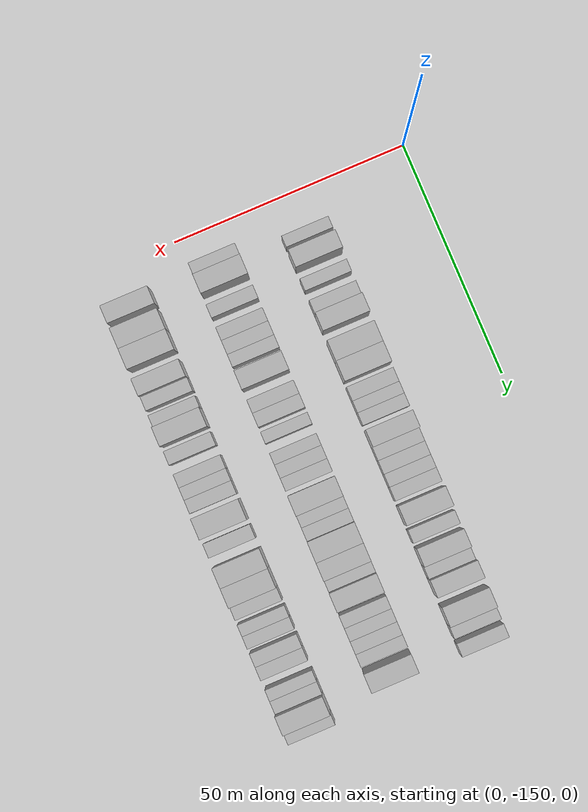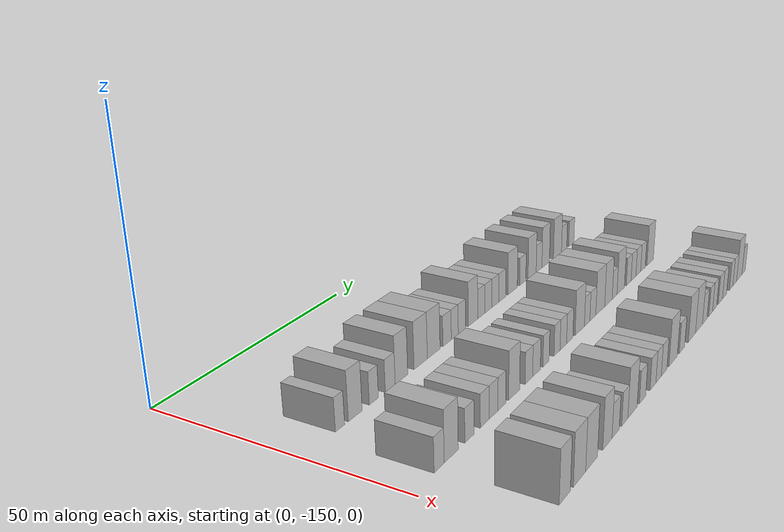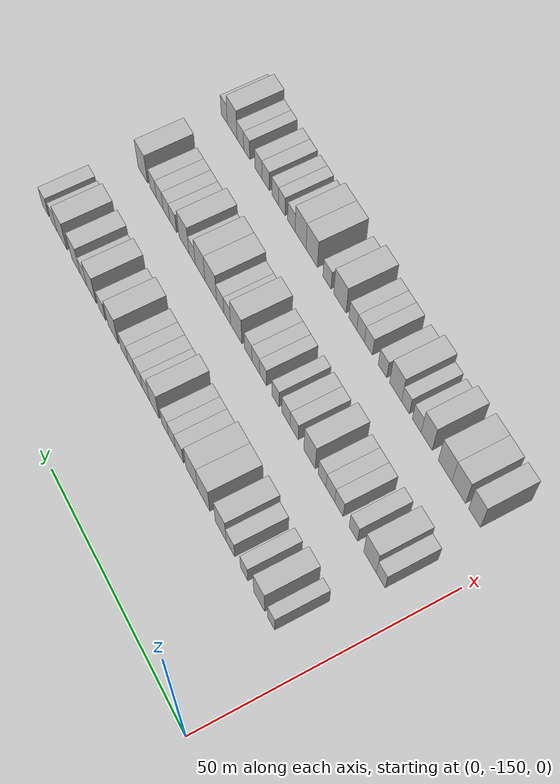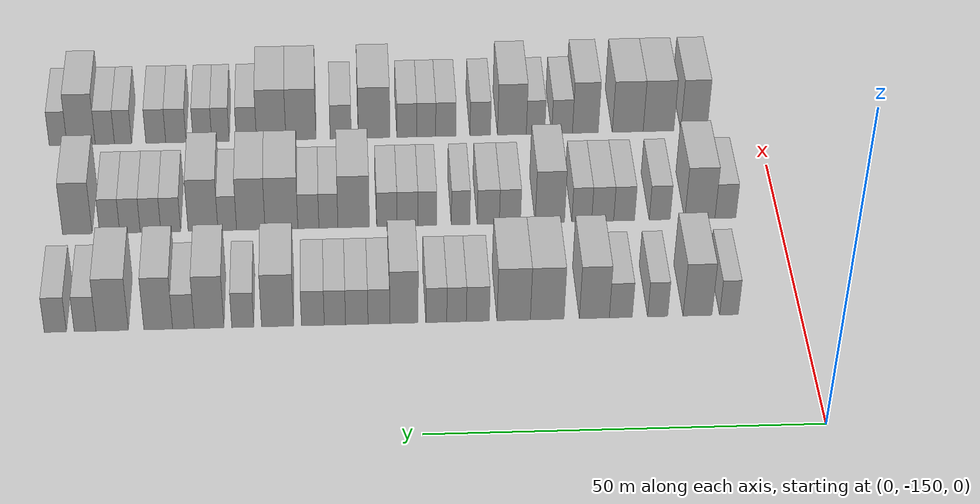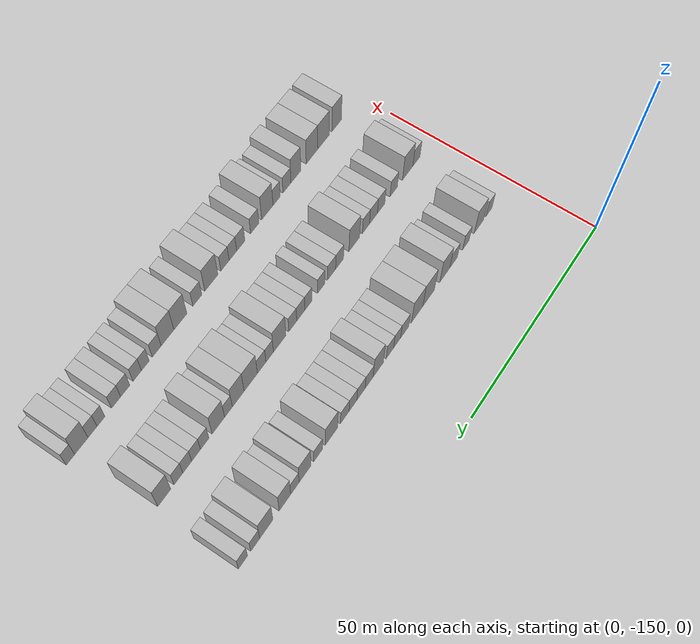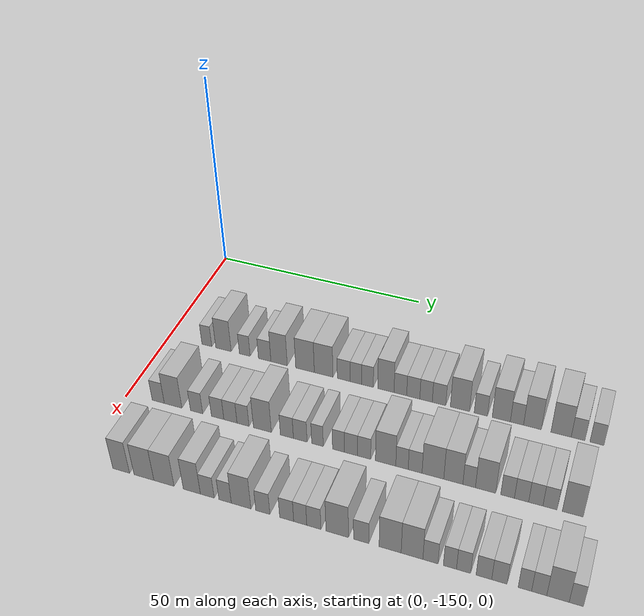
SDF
<sdf version="1.6">
 <world name="default">
  <model name="building_26">
   <static>1</static>
   <pose>25.0000 -140.5978 0 0.000000 0.000000 0.000000</pose>
   <link name="link">
    <pose>0 0 3.00 0 0 0</pose>
    <collision name="collision"><geometry><box><size>10.0000 2.4263 6.0000</size></box></geometry></collision>
    <visual name="visual">
     <cast_shadows>0</cast_shadows>
     <geometry><box><size>10.0000 2.4263 6.0000</size></box></geometry>
     <material>
      <script>
       <uri>model://HANNAS_wall/materials/scripts</uri>
       <uri>model://HANNAS_wall/materials/textures</uri>
       <name>vrc/HANNAS_wall</name>
      </script>
     </material>
    </visual>
   </link>
  </model>
  <model name="building_27">
   <static>1</static>
   <pose>25.0000 -136.4963 0 0.000000 0.000000 0.000000</pose>
   <link name="link">
    <pose>0 0 4.50 0 0 0</pose>
    <collision name="collision"><geometry><box><size>10.0000 3.7765 9.0000</size></box></geometry></collision>
    <visual name="visual">
     <cast_shadows>0</cast_shadows>
     <geometry><box><size>10.0000 3.7765 9.0000</size></box></geometry>
     <material>
      <script>
       <uri>model://HANNAS_wall/materials/scripts</uri>
       <uri>model://HANNAS_wall/materials/textures</uri>
       <name>vrc/HANNAS_wall</name>
      </script>
     </material>
    </visual>
   </link>
  </model>
  <model name="building_28">
   <static>1</static>
   <pose>25.0000 -131.3021 0 0.000000 0.000000 0.000000</pose>
   <link name="link">
    <pose>0 0 3.00 0 0 0</pose>
    <collision name="collision"><geometry><box><size>10.0000 2.6121 6.0000</size></box></geometry></collision>
    <visual name="visual">
     <cast_shadows>0</cast_shadows>
     <geometry><box><size>10.0000 2.6121 6.0000</size></box></geometry>
     <material>
      <script>
       <uri>model://HANNAS_wall/materials/scripts</uri>
       <uri>model://HANNAS_wall/materials/textures</uri>
       <name>vrc/HANNAS_wall</name>
      </script>
     </material>
    </visual>
   </link>
  </model>
  <model name="building_29">
   <static>1</static>
   <pose>25.0000 -126.5000 0 0.000000 0.000000 0.000000</pose>
   <link name="link">
    <pose>0 0 3.00 0 0 0</pose>
    <collision name="collision"><geometry><box><size>10.0000 2.9920 6.0000</size></box></geometry></collision>
    <visual name="visual">
     <cast_shadows>0</cast_shadows>
     <geometry><box><size>10.0000 2.9920 6.0000</size></box></geometry>
     <material>
      <script>
       <uri>model://HANNAS_wall/materials/scripts</uri>
       <uri>model://HANNAS_wall/materials/textures</uri>
       <name>vrc/HANNAS_wall</name>
      </script>
     </material>
    </visual>
   </link>
  </model>
  <model name="building_30">
   <static>1</static>
   <pose>25.0000 -123.0553 0 0.000000 0.000000 0.000000</pose>
   <link name="link">
    <pose>0 0 4.50 0 0 0</pose>
    <collision name="collision"><geometry><box><size>10.0000 3.8975 9.0000</size></box></geometry></collision>
    <visual name="visual">
     <cast_shadows>0</cast_shadows>
     <geometry><box><size>10.0000 3.8975 9.0000</size></box></geometry>
     <material>
      <script>
       <uri>model://HANNAS_wall/materials/scripts</uri>
       <uri>model://HANNAS_wall/materials/textures</uri>
       <name>vrc/HANNAS_wall</name>
      </script>
     </material>
    </visual>
   </link>
  </model>
  <model name="building_31">
   <static>1</static>
   <pose>25.0000 -116.9213 0 0.000000 0.000000 0.000000</pose>
   <link name="link">
    <pose>0 0 4.50 0 0 0</pose>
    <collision name="collision"><geometry><box><size>10.0000 4.3705 9.0000</size></box></geometry></collision>
    <visual name="visual">
     <cast_shadows>0</cast_shadows>
     <geometry><box><size>10.0000 4.3705 9.0000</size></box></geometry>
     <material>
      <script>
       <uri>model://HANNAS_wall/materials/scripts</uri>
       <uri>model://HANNAS_wall/materials/textures</uri>
       <name>vrc/HANNAS_wall</name>
      </script>
     </material>
    </visual>
   </link>
  </model>
  <model name="building_32">
   <static>1</static>
   <pose>25.0000 -112.5708 0 0.000000 0.000000 0.000000</pose>
   <link name="link">
    <pose>0 0 4.50 0 0 0</pose>
    <collision name="collision"><geometry><box><size>10.0000 4.3304 9.0000</size></box></geometry></collision>
    <visual name="visual">
     <cast_shadows>0</cast_shadows>
     <geometry><box><size>10.0000 4.3304 9.0000</size></box></geometry>
     <material>
      <script>
       <uri>model://HANNAS_wall/materials/scripts</uri>
       <uri>model://HANNAS_wall/materials/textures</uri>
       <name>vrc/HANNAS_wall</name>
      </script>
     </material>
    </visual>
   </link>
  </model>
  <model name="building_33">
   <static>1</static>
   <pose>25.0000 -107.9095 0 0.000000 0.000000 0.000000</pose>
   <link name="link">
    <pose>0 0 3.00 0 0 0</pose>
    <collision name="collision"><geometry><box><size>10.0000 2.9922 6.0000</size></box></geometry></collision>
    <visual name="visual">
     <cast_shadows>0</cast_shadows>
     <geometry><box><size>10.0000 2.9922 6.0000</size></box></geometry>
     <material>
      <script>
       <uri>model://HANNAS_wall/materials/scripts</uri>
       <uri>model://HANNAS_wall/materials/textures</uri>
       <name>vrc/HANNAS_wall</name>
      </script>
     </material>
    </visual>
   </link>
  </model>
  <model name="building_34">
   <static>1</static>
   <pose>25.0000 -105.1496 0 0.000000 0.000000 0.000000</pose>
   <link name="link">
    <pose>0 0 3.00 0 0 0</pose>
    <collision name="collision"><geometry><box><size>10.0000 2.5277 6.0000</size></box></geometry></collision>
    <visual name="visual">
     <cast_shadows>0</cast_shadows>
     <geometry><box><size>10.0000 2.5277 6.0000</size></box></geometry>
     <material>
      <script>
       <uri>model://HANNAS_wall/materials/scripts</uri>
       <uri>model://HANNAS_wall/materials/textures</uri>
       <name>vrc/HANNAS_wall</name>
      </script>
     </material>
    </visual>
   </link>
  </model>
  <model name="building_35">
   <static>1</static>
   <pose>25.0000 -102.5309 0 0.000000 0.000000 0.000000</pose>
   <link name="link">
    <pose>0 0 3.00 0 0 0</pose>
    <collision name="collision"><geometry><box><size>10.0000 2.7097 6.0000</size></box></geometry></collision>
    <visual name="visual">
     <cast_shadows>0</cast_shadows>
     <geometry><box><size>10.0000 2.7097 6.0000</size></box></geometry>
     <material>
      <script>
       <uri>model://HANNAS_wall/materials/scripts</uri>
       <uri>model://HANNAS_wall/materials/textures</uri>
       <name>vrc/HANNAS_wall</name>
      </script>
     </material>
    </visual>
   </link>
  </model>
  <model name="building_36">
   <static>1</static>
   <pose>25.0000 -98.3424 0 0.000000 0.000000 0.000000</pose>
   <link name="link">
    <pose>0 0 4.50 0 0 0</pose>
    <collision name="collision"><geometry><box><size>10.0000 3.6674 9.0000</size></box></geometry></collision>
    <visual name="visual">
     <cast_shadows>0</cast_shadows>
     <geometry><box><size>10.0000 3.6674 9.0000</size></box></geometry>
     <material>
      <script>
       <uri>model://HANNAS_wall/materials/scripts</uri>
       <uri>model://HANNAS_wall/materials/textures</uri>
       <name>vrc/HANNAS_wall</name>
      </script>
     </material>
    </visual>
   </link>
  </model>
  <model name="building_37">
   <static>1</static>
   <pose>25.0000 -95.0966 0 0.000000 0.000000 0.000000</pose>
   <link name="link">
    <pose>0 0 3.00 0 0 0</pose>
    <collision name="collision"><geometry><box><size>10.0000 2.8241 6.0000</size></box></geometry></collision>
    <visual name="visual">
     <cast_shadows>0</cast_shadows>
     <geometry><box><size>10.0000 2.8241 6.0000</size></box></geometry>
     <material>
      <script>
       <uri>model://HANNAS_wall/materials/scripts</uri>
       <uri>model://HANNAS_wall/materials/textures</uri>
       <name>vrc/HANNAS_wall</name>
      </script>
     </material>
    </visual>
   </link>
  </model>
  <model name="building_38">
   <static>1</static>
   <pose>25.0000 -92.2332 0 0.000000 0.000000 0.000000</pose>
   <link name="link">
    <pose>0 0 3.00 0 0 0</pose>
    <collision name="collision"><geometry><box><size>10.0000 2.9028 6.0000</size></box></geometry></collision>
    <visual name="visual">
     <cast_shadows>0</cast_shadows>
     <geometry><box><size>10.0000 2.9028 6.0000</size></box></geometry>
     <material>
      <script>
       <uri>model://HANNAS_wall/materials/scripts</uri>
       <uri>model://HANNAS_wall/materials/textures</uri>
       <name>vrc/HANNAS_wall</name>
      </script>
     </material>
    </visual>
   </link>
  </model>
  <model name="building_39">
   <static>1</static>
   <pose>25.0000 -89.4062 0 0.000000 0.000000 0.000000</pose>
   <link name="link">
    <pose>0 0 3.00 0 0 0</pose>
    <collision name="collision"><geometry><box><size>10.0000 2.7512 6.0000</size></box></geometry></collision>
    <visual name="visual">
     <cast_shadows>0</cast_shadows>
     <geometry><box><size>10.0000 2.7512 6.0000</size></box></geometry>
     <material>
      <script>
       <uri>model://HANNAS_wall/materials/scripts</uri>
       <uri>model://HANNAS_wall/materials/textures</uri>
       <name>vrc/HANNAS_wall</name>
      </script>
     </material>
    </visual>
   </link>
  </model>
  <model name="building_40">
   <static>1</static>
   <pose>25.0000 -86.5562 0 0.000000 0.000000 0.000000</pose>
   <link name="link">
    <pose>0 0 3.00 0 0 0</pose>
    <collision name="collision"><geometry><box><size>10.0000 2.9488 6.0000</size></box></geometry></collision>
    <visual name="visual">
     <cast_shadows>0</cast_shadows>
     <geometry><box><size>10.0000 2.9488 6.0000</size></box></geometry>
     <material>
      <script>
       <uri>model://HANNAS_wall/materials/scripts</uri>
       <uri>model://HANNAS_wall/materials/textures</uri>
       <name>vrc/HANNAS_wall</name>
      </script>
     </material>
    </visual>
   </link>
  </model>
  <model name="building_41">
   <static>1</static>
   <pose>25.0000 -82.0064 0 0.000000 0.000000 0.000000</pose>
   <link name="link">
    <pose>0 0 4.50 0 0 0</pose>
    <collision name="collision"><geometry><box><size>10.0000 4.1509 9.0000</size></box></geometry></collision>
    <visual name="visual">
     <cast_shadows>0</cast_shadows>
     <geometry><box><size>10.0000 4.1509 9.0000</size></box></geometry>
     <material>
      <script>
       <uri>model://HANNAS_wall/materials/scripts</uri>
       <uri>model://HANNAS_wall/materials/textures</uri>
       <name>vrc/HANNAS_wall</name>
      </script>
     </material>
    </visual>
   </link>
  </model>
  <model name="building_42">
   <static>1</static>
   <pose>25.0000 -77.5061 0 0.000000 0.000000 0.000000</pose>
   <link name="link">
    <pose>0 0 3.00 0 0 0</pose>
    <collision name="collision"><geometry><box><size>10.0000 2.8496 6.0000</size></box></geometry></collision>
    <visual name="visual">
     <cast_shadows>0</cast_shadows>
     <geometry><box><size>10.0000 2.8496 6.0000</size></box></geometry>
     <material>
      <script>
       <uri>model://HANNAS_wall/materials/scripts</uri>
       <uri>model://HANNAS_wall/materials/textures</uri>
       <name>vrc/HANNAS_wall</name>
      </script>
     </material>
    </visual>
   </link>
  </model>
  <model name="building_43">
   <static>1</static>
   <pose>25.0000 -73.1588 0 0.000000 0.000000 0.000000</pose>
   <link name="link">
    <pose>0 0 4.50 0 0 0</pose>
    <collision name="collision"><geometry><box><size>10.0000 3.8450 9.0000</size></box></geometry></collision>
    <visual name="visual">
     <cast_shadows>0</cast_shadows>
     <geometry><box><size>10.0000 3.8450 9.0000</size></box></geometry>
     <material>
      <script>
       <uri>model://HANNAS_wall/materials/scripts</uri>
       <uri>model://HANNAS_wall/materials/textures</uri>
       <name>vrc/HANNAS_wall</name>
      </script>
     </material>
    </visual>
   </link>
  </model>
  <model name="building_44">
   <static>1</static>
   <pose>25.0000 -69.8470 0 0.000000 0.000000 0.000000</pose>
   <link name="link">
    <pose>0 0 3.00 0 0 0</pose>
    <collision name="collision"><geometry><box><size>10.0000 2.7786 6.0000</size></box></geometry></collision>
    <visual name="visual">
     <cast_shadows>0</cast_shadows>
     <geometry><box><size>10.0000 2.7786 6.0000</size></box></geometry>
     <material>
      <script>
       <uri>model://HANNAS_wall/materials/scripts</uri>
       <uri>model://HANNAS_wall/materials/textures</uri>
       <name>vrc/HANNAS_wall</name>
      </script>
     </material>
    </visual>
   </link>
  </model>
  <model name="building_45">
   <static>1</static>
   <pose>25.0000 -66.6069 0 0.000000 0.000000 0.000000</pose>
   <link name="link">
    <pose>0 0 4.50 0 0 0</pose>
    <collision name="collision"><geometry><box><size>10.0000 3.7016 9.0000</size></box></geometry></collision>
    <visual name="visual">
     <cast_shadows>0</cast_shadows>
     <geometry><box><size>10.0000 3.7016 9.0000</size></box></geometry>
     <material>
      <script>
       <uri>model://HANNAS_wall/materials/scripts</uri>
       <uri>model://HANNAS_wall/materials/textures</uri>
       <name>vrc/HANNAS_wall</name>
      </script>
     </material>
    </visual>
   </link>
  </model>
  <model name="building_46">
   <static>1</static>
   <pose>25.0000 -60.6728 0 0.000000 0.000000 0.000000</pose>
   <link name="link">
    <pose>0 0 4.50 0 0 0</pose>
    <collision name="collision"><geometry><box><size>10.0000 4.1666 9.0000</size></box></geometry></collision>
    <visual name="visual">
     <cast_shadows>0</cast_shadows>
     <geometry><box><size>10.0000 4.1666 9.0000</size></box></geometry>
     <material>
      <script>
       <uri>model://HANNAS_wall/materials/scripts</uri>
       <uri>model://HANNAS_wall/materials/textures</uri>
       <name>vrc/HANNAS_wall</name>
      </script>
     </material>
    </visual>
   </link>
  </model>
  <model name="building_47">
   <static>1</static>
   <pose>25.0000 -57.1904 0 0.000000 0.000000 0.000000</pose>
   <link name="link">
    <pose>0 0 3.00 0 0 0</pose>
    <collision name="collision"><geometry><box><size>10.0000 2.7982 6.0000</size></box></geometry></collision>
    <visual name="visual">
     <cast_shadows>0</cast_shadows>
     <geometry><box><size>10.0000 2.7982 6.0000</size></box></geometry>
     <material>
      <script>
       <uri>model://HANNAS_wall/materials/scripts</uri>
       <uri>model://HANNAS_wall/materials/textures</uri>
       <name>vrc/HANNAS_wall</name>
      </script>
     </material>
    </visual>
   </link>
  </model>
  <model name="building_48">
   <static>1</static>
   <pose>25.0000 -53.3715 0 0.000000 0.000000 0.000000</pose>
   <link name="link">
    <pose>0 0 3.00 0 0 0</pose>
    <collision name="collision"><geometry><box><size>10.0000 2.8395 6.0000</size></box></geometry></collision>
    <visual name="visual">
     <cast_shadows>0</cast_shadows>
     <geometry><box><size>10.0000 2.8395 6.0000</size></box></geometry>
     <material>
      <script>
       <uri>model://HANNAS_wall/materials/scripts</uri>
       <uri>model://HANNAS_wall/materials/textures</uri>
       <name>vrc/HANNAS_wall</name>
      </script>
     </material>
    </visual>
   </link>
  </model>
  <model name="building_144">
   <static>1</static>
   <pose>44.0000 -142.7298 0 0.000000 0.000000 0.000000</pose>
   <link name="link">
    <pose>0 0 3.00 0 0 0</pose>
    <collision name="collision"><geometry><box><size>10.0000 2.8555 6.0000</size></box></geometry></collision>
    <visual name="visual">
     <cast_shadows>0</cast_shadows>
     <geometry><box><size>10.0000 2.8555 6.0000</size></box></geometry>
     <material>
      <script>
       <uri>model://HANNAS_wall/materials/scripts</uri>
       <uri>model://HANNAS_wall/materials/textures</uri>
       <name>vrc/HANNAS_wall</name>
      </script>
     </material>
    </visual>
   </link>
  </model>
  <model name="building_145">
   <static>1</static>
   <pose>44.0000 -139.2412 0 0.000000 0.000000 0.000000</pose>
   <link name="link">
    <pose>0 0 4.50 0 0 0</pose>
    <collision name="collision"><geometry><box><size>10.0000 4.1217 9.0000</size></box></geometry></collision>
    <visual name="visual">
     <cast_shadows>0</cast_shadows>
     <geometry><box><size>10.0000 4.1217 9.0000</size></box></geometry>
     <material>
      <script>
       <uri>model://HANNAS_wall/materials/scripts</uri>
       <uri>model://HANNAS_wall/materials/textures</uri>
       <name>vrc/HANNAS_wall</name>
      </script>
     </material>
    </visual>
   </link>
  </model>
  <model name="building_146">
   <static>1</static>
   <pose>44.0000 -133.7588 0 0.000000 0.000000 0.000000</pose>
   <link name="link">
    <pose>0 0 3.00 0 0 0</pose>
    <collision name="collision"><geometry><box><size>10.0000 2.8431 6.0000</size></box></geometry></collision>
    <visual name="visual">
     <cast_shadows>0</cast_shadows>
     <geometry><box><size>10.0000 2.8431 6.0000</size></box></geometry>
     <material>
      <script>
       <uri>model://HANNAS_wall/materials/scripts</uri>
       <uri>model://HANNAS_wall/materials/textures</uri>
       <name>vrc/HANNAS_wall</name>
      </script>
     </material>
    </visual>
   </link>
  </model>
  <model name="building_147">
   <static>1</static>
   <pose>44.0000 -128.9131 0 0.000000 0.000000 0.000000</pose>
   <link name="link">
    <pose>0 0 3.00 0 0 0</pose>
    <collision name="collision"><geometry><box><size>10.0000 2.8482 6.0000</size></box></geometry></collision>
    <visual name="visual">
     <cast_shadows>0</cast_shadows>
     <geometry><box><size>10.0000 2.8482 6.0000</size></box></geometry>
     <material>
      <script>
       <uri>model://HANNAS_wall/materials/scripts</uri>
       <uri>model://HANNAS_wall/materials/textures</uri>
       <name>vrc/HANNAS_wall</name>
      </script>
     </material>
    </visual>
   </link>
  </model>
  <model name="building_148">
   <static>1</static>
   <pose>44.0000 -125.9942 0 0.000000 0.000000 0.000000</pose>
   <link name="link">
    <pose>0 0 3.00 0 0 0</pose>
    <collision name="collision"><geometry><box><size>10.0000 2.9897 6.0000</size></box></geometry></collision>
    <visual name="visual">
     <cast_shadows>0</cast_shadows>
     <geometry><box><size>10.0000 2.9897 6.0000</size></box></geometry>
     <material>
      <script>
       <uri>model://HANNAS_wall/materials/scripts</uri>
       <uri>model://HANNAS_wall/materials/textures</uri>
       <name>vrc/HANNAS_wall</name>
      </script>
     </material>
    </visual>
   </link>
  </model>
  <model name="building_149">
   <static>1</static>
   <pose>44.0000 -123.1475 0 0.000000 0.000000 0.000000</pose>
   <link name="link">
    <pose>0 0 3.00 0 0 0</pose>
    <collision name="collision"><geometry><box><size>10.0000 2.7037 6.0000</size></box></geometry></collision>
    <visual name="visual">
     <cast_shadows>0</cast_shadows>
     <geometry><box><size>10.0000 2.7037 6.0000</size></box></geometry>
     <material>
      <script>
       <uri>model://HANNAS_wall/materials/scripts</uri>
       <uri>model://HANNAS_wall/materials/textures</uri>
       <name>vrc/HANNAS_wall</name>
      </script>
     </material>
    </visual>
   </link>
  </model>
  <model name="building_150">
   <static>1</static>
   <pose>44.0000 -118.8008 0 0.000000 0.000000 0.000000</pose>
   <link name="link">
    <pose>0 0 4.50 0 0 0</pose>
    <collision name="collision"><geometry><box><size>10.0000 3.9897 9.0000</size></box></geometry></collision>
    <visual name="visual">
     <cast_shadows>0</cast_shadows>
     <geometry><box><size>10.0000 3.9897 9.0000</size></box></geometry>
     <material>
      <script>
       <uri>model://HANNAS_wall/materials/scripts</uri>
       <uri>model://HANNAS_wall/materials/textures</uri>
       <name>vrc/HANNAS_wall</name>
      </script>
     </material>
    </visual>
   </link>
  </model>
  <model name="building_151">
   <static>1</static>
   <pose>44.0000 -113.3717 0 0.000000 0.000000 0.000000</pose>
   <link name="link">
    <pose>0 0 3.00 0 0 0</pose>
    <collision name="collision"><geometry><box><size>10.0000 2.8684 6.0000</size></box></geometry></collision>
    <visual name="visual">
     <cast_shadows>0</cast_shadows>
     <geometry><box><size>10.0000 2.8684 6.0000</size></box></geometry>
     <material>
      <script>
       <uri>model://HANNAS_wall/materials/scripts</uri>
       <uri>model://HANNAS_wall/materials/textures</uri>
       <name>vrc/HANNAS_wall</name>
      </script>
     </material>
    </visual>
   </link>
  </model>
  <model name="building_152">
   <static>1</static>
   <pose>44.0000 -110.4384 0 0.000000 0.000000 0.000000</pose>
   <link name="link">
    <pose>0 0 3.00 0 0 0</pose>
    <collision name="collision"><geometry><box><size>10.0000 2.9983 6.0000</size></box></geometry></collision>
    <visual name="visual">
     <cast_shadows>0</cast_shadows>
     <geometry><box><size>10.0000 2.9983 6.0000</size></box></geometry>
     <material>
      <script>
       <uri>model://HANNAS_wall/materials/scripts</uri>
       <uri>model://HANNAS_wall/materials/textures</uri>
       <name>vrc/HANNAS_wall</name>
      </script>
     </material>
    </visual>
   </link>
  </model>
  <model name="building_153">
   <static>1</static>
   <pose>44.0000 -106.6812 0 0.000000 0.000000 0.000000</pose>
   <link name="link">
    <pose>0 0 3.00 0 0 0</pose>
    <collision name="collision"><geometry><box><size>10.0000 2.5162 6.0000</size></box></geometry></collision>
    <visual name="visual">
     <cast_shadows>0</cast_shadows>
     <geometry><box><size>10.0000 2.5162 6.0000</size></box></geometry>
     <material>
      <script>
       <uri>model://HANNAS_wall/materials/scripts</uri>
       <uri>model://HANNAS_wall/materials/textures</uri>
       <name>vrc/HANNAS_wall</name>
      </script>
     </material>
    </visual>
   </link>
  </model>
  <model name="building_154">
   <static>1</static>
   <pose>44.0000 -102.1625 0 0.000000 0.000000 0.000000</pose>
   <link name="link">
    <pose>0 0 3.00 0 0 0</pose>
    <collision name="collision"><geometry><box><size>10.0000 2.5213 6.0000</size></box></geometry></collision>
    <visual name="visual">
     <cast_shadows>0</cast_shadows>
     <geometry><box><size>10.0000 2.5213 6.0000</size></box></geometry>
     <material>
      <script>
       <uri>model://HANNAS_wall/materials/scripts</uri>
       <uri>model://HANNAS_wall/materials/textures</uri>
       <name>vrc/HANNAS_wall</name>
      </script>
     </material>
    </visual>
   </link>
  </model>
  <model name="building_155">
   <static>1</static>
   <pose>44.0000 -99.4831 0 0.000000 0.000000 0.000000</pose>
   <link name="link">
    <pose>0 0 3.00 0 0 0</pose>
    <collision name="collision"><geometry><box><size>10.0000 2.8375 6.0000</size></box></geometry></collision>
    <visual name="visual">
     <cast_shadows>0</cast_shadows>
     <geometry><box><size>10.0000 2.8375 6.0000</size></box></geometry>
     <material>
      <script>
       <uri>model://HANNAS_wall/materials/scripts</uri>
       <uri>model://HANNAS_wall/materials/textures</uri>
       <name>vrc/HANNAS_wall</name>
      </script>
     </material>
    </visual>
   </link>
  </model>
  <model name="building_156">
   <static>1</static>
   <pose>44.0000 -96.6881 0 0.000000 0.000000 0.000000</pose>
   <link name="link">
    <pose>0 0 3.00 0 0 0</pose>
    <collision name="collision"><geometry><box><size>10.0000 2.7524 6.0000</size></box></geometry></collision>
    <visual name="visual">
     <cast_shadows>0</cast_shadows>
     <geometry><box><size>10.0000 2.7524 6.0000</size></box></geometry>
     <material>
      <script>
       <uri>model://HANNAS_wall/materials/scripts</uri>
       <uri>model://HANNAS_wall/materials/textures</uri>
       <name>vrc/HANNAS_wall</name>
      </script>
     </material>
    </visual>
   </link>
  </model>
  <model name="building_157">
   <static>1</static>
   <pose>44.0000 -92.1862 0 0.000000 0.000000 0.000000</pose>
   <link name="link">
    <pose>0 0 4.50 0 0 0</pose>
    <collision name="collision"><geometry><box><size>10.0000 4.2514 9.0000</size></box></geometry></collision>
    <visual name="visual">
     <cast_shadows>0</cast_shadows>
     <geometry><box><size>10.0000 4.2514 9.0000</size></box></geometry>
     <material>
      <script>
       <uri>model://HANNAS_wall/materials/scripts</uri>
       <uri>model://HANNAS_wall/materials/textures</uri>
       <name>vrc/HANNAS_wall</name>
      </script>
     </material>
    </visual>
   </link>
  </model>
  <model name="building_158">
   <static>1</static>
   <pose>44.0000 -88.7764 0 0.000000 0.000000 0.000000</pose>
   <link name="link">
    <pose>0 0 3.00 0 0 0</pose>
    <collision name="collision"><geometry><box><size>10.0000 2.5682 6.0000</size></box></geometry></collision>
    <visual name="visual">
     <cast_shadows>0</cast_shadows>
     <geometry><box><size>10.0000 2.5682 6.0000</size></box></geometry>
     <material>
      <script>
       <uri>model://HANNAS_wall/materials/scripts</uri>
       <uri>model://HANNAS_wall/materials/textures</uri>
       <name>vrc/HANNAS_wall</name>
      </script>
     </material>
    </visual>
   </link>
  </model>
  <model name="building_159">
   <static>1</static>
   <pose>44.0000 -86.0699 0 0.000000 0.000000 0.000000</pose>
   <link name="link">
    <pose>0 0 3.00 0 0 0</pose>
    <collision name="collision"><geometry><box><size>10.0000 2.8447 6.0000</size></box></geometry></collision>
    <visual name="visual">
     <cast_shadows>0</cast_shadows>
     <geometry><box><size>10.0000 2.8447 6.0000</size></box></geometry>
     <material>
      <script>
       <uri>model://HANNAS_wall/materials/scripts</uri>
       <uri>model://HANNAS_wall/materials/textures</uri>
       <name>vrc/HANNAS_wall</name>
      </script>
     </material>
    </visual>
   </link>
  </model>
  <model name="building_160">
   <static>1</static>
   <pose>44.0000 -82.4317 0 0.000000 0.000000 0.000000</pose>
   <link name="link">
    <pose>0 0 4.50 0 0 0</pose>
    <collision name="collision"><geometry><box><size>10.0000 4.4317 9.0000</size></box></geometry></collision>
    <visual name="visual">
     <cast_shadows>0</cast_shadows>
     <geometry><box><size>10.0000 4.4317 9.0000</size></box></geometry>
     <material>
      <script>
       <uri>model://HANNAS_wall/materials/scripts</uri>
       <uri>model://HANNAS_wall/materials/textures</uri>
       <name>vrc/HANNAS_wall</name>
      </script>
     </material>
    </visual>
   </link>
  </model>
  <model name="building_161">
   <static>1</static>
   <pose>44.0000 -78.2923 0 0.000000 0.000000 0.000000</pose>
   <link name="link">
    <pose>0 0 4.50 0 0 0</pose>
    <collision name="collision"><geometry><box><size>10.0000 3.8472 9.0000</size></box></geometry></collision>
    <visual name="visual">
     <cast_shadows>0</cast_shadows>
     <geometry><box><size>10.0000 3.8472 9.0000</size></box></geometry>
     <material>
      <script>
       <uri>model://HANNAS_wall/materials/scripts</uri>
       <uri>model://HANNAS_wall/materials/textures</uri>
       <name>vrc/HANNAS_wall</name>
      </script>
     </material>
    </visual>
   </link>
  </model>
  <model name="building_162">
   <static>1</static>
   <pose>44.0000 -75.1116 0 0.000000 0.000000 0.000000</pose>
   <link name="link">
    <pose>0 0 3.00 0 0 0</pose>
    <collision name="collision"><geometry><box><size>10.0000 2.5141 6.0000</size></box></geometry></collision>
    <visual name="visual">
     <cast_shadows>0</cast_shadows>
     <geometry><box><size>10.0000 2.5141 6.0000</size></box></geometry>
     <material>
      <script>
       <uri>model://HANNAS_wall/materials/scripts</uri>
       <uri>model://HANNAS_wall/materials/textures</uri>
       <name>vrc/HANNAS_wall</name>
      </script>
     </material>
    </visual>
   </link>
  </model>
  <model name="building_163">
   <static>1</static>
   <pose>44.0000 -71.8454 0 0.000000 0.000000 0.000000</pose>
   <link name="link">
    <pose>0 0 4.50 0 0 0</pose>
    <collision name="collision"><geometry><box><size>10.0000 4.0183 9.0000</size></box></geometry></collision>
    <visual name="visual">
     <cast_shadows>0</cast_shadows>
     <geometry><box><size>10.0000 4.0183 9.0000</size></box></geometry>
     <material>
      <script>
       <uri>model://HANNAS_wall/materials/scripts</uri>
       <uri>model://HANNAS_wall/materials/textures</uri>
       <name>vrc/HANNAS_wall</name>
      </script>
     </material>
    </visual>
   </link>
  </model>
  <model name="building_164">
   <static>1</static>
   <pose>44.0000 -67.4927 0 0.000000 0.000000 0.000000</pose>
   <link name="link">
    <pose>0 0 3.00 0 0 0</pose>
    <collision name="collision"><geometry><box><size>10.0000 2.6871 6.0000</size></box></geometry></collision>
    <visual name="visual">
     <cast_shadows>0</cast_shadows>
     <geometry><box><size>10.0000 2.6871 6.0000</size></box></geometry>
     <material>
      <script>
       <uri>model://HANNAS_wall/materials/scripts</uri>
       <uri>model://HANNAS_wall/materials/textures</uri>
       <name>vrc/HANNAS_wall</name>
      </script>
     </material>
    </visual>
   </link>
  </model>
  <model name="building_165">
   <static>1</static>
   <pose>44.0000 -64.7639 0 0.000000 0.000000 0.000000</pose>
   <link name="link">
    <pose>0 0 3.00 0 0 0</pose>
    <collision name="collision"><geometry><box><size>10.0000 2.7705 6.0000</size></box></geometry></collision>
    <visual name="visual">
     <cast_shadows>0</cast_shadows>
     <geometry><box><size>10.0000 2.7705 6.0000</size></box></geometry>
     <material>
      <script>
       <uri>model://HANNAS_wall/materials/scripts</uri>
       <uri>model://HANNAS_wall/materials/textures</uri>
       <name>vrc/HANNAS_wall</name>
      </script>
     </material>
    </visual>
   </link>
  </model>
  <model name="building_166">
   <static>1</static>
   <pose>44.0000 -62.0002 0 0.000000 0.000000 0.000000</pose>
   <link name="link">
    <pose>0 0 3.00 0 0 0</pose>
    <collision name="collision"><geometry><box><size>10.0000 2.7569 6.0000</size></box></geometry></collision>
    <visual name="visual">
     <cast_shadows>0</cast_shadows>
     <geometry><box><size>10.0000 2.7569 6.0000</size></box></geometry>
     <material>
      <script>
       <uri>model://HANNAS_wall/materials/scripts</uri>
       <uri>model://HANNAS_wall/materials/textures</uri>
       <name>vrc/HANNAS_wall</name>
      </script>
     </material>
    </visual>
   </link>
  </model>
  <model name="building_167">
   <static>1</static>
   <pose>44.0000 -59.2667 0 0.000000 0.000000 0.000000</pose>
   <link name="link">
    <pose>0 0 3.00 0 0 0</pose>
    <collision name="collision"><geometry><box><size>10.0000 2.7101 6.0000</size></box></geometry></collision>
    <visual name="visual">
     <cast_shadows>0</cast_shadows>
     <geometry><box><size>10.0000 2.7101 6.0000</size></box></geometry>
     <material>
      <script>
       <uri>model://HANNAS_wall/materials/scripts</uri>
       <uri>model://HANNAS_wall/materials/textures</uri>
       <name>vrc/HANNAS_wall</name>
      </script>
     </material>
    </visual>
   </link>
  </model>
  <model name="building_168">
   <static>1</static>
   <pose>44.0000 -54.9237 0 0.000000 0.000000 0.000000</pose>
   <link name="link">
    <pose>0 0 4.50 0 0 0</pose>
    <collision name="collision"><geometry><box><size>10.0000 3.9758 9.0000</size></box></geometry></collision>
    <visual name="visual">
     <cast_shadows>0</cast_shadows>
     <geometry><box><size>10.0000 3.9758 9.0000</size></box></geometry>
     <material>
      <script>
       <uri>model://HANNAS_wall/materials/scripts</uri>
       <uri>model://HANNAS_wall/materials/textures</uri>
       <name>vrc/HANNAS_wall</name>
      </script>
     </material>
    </visual>
   </link>
  </model>
  <model name="building_266">
   <static>1</static>
   <pose>63.0000 -140.8308 0 0.000000 0.000000 0.000000</pose>
   <link name="link">
    <pose>0 0 4.50 0 0 0</pose>
    <collision name="collision"><geometry><box><size>10.0000 3.7367 9.0000</size></box></geometry></collision>
    <visual name="visual">
     <cast_shadows>0</cast_shadows>
     <geometry><box><size>10.0000 3.7367 9.0000</size></box></geometry>
     <material>
      <script>
       <uri>model://HANNAS_wall/materials/scripts</uri>
       <uri>model://HANNAS_wall/materials/textures</uri>
       <name>vrc/HANNAS_wall</name>
      </script>
     </material>
    </visual>
   </link>
  </model>
  <model name="building_267">
   <static>1</static>
   <pose>63.0000 -135.7809 0 0.000000 0.000000 0.000000</pose>
   <link name="link">
    <pose>0 0 4.50 0 0 0</pose>
    <collision name="collision"><geometry><box><size>10.0000 4.3631 9.0000</size></box></geometry></collision>
    <visual name="visual">
     <cast_shadows>0</cast_shadows>
     <geometry><box><size>10.0000 4.3631 9.0000</size></box></geometry>
     <material>
      <script>
       <uri>model://HANNAS_wall/materials/scripts</uri>
       <uri>model://HANNAS_wall/materials/textures</uri>
       <name>vrc/HANNAS_wall</name>
      </script>
     </material>
    </visual>
   </link>
  </model>
  <model name="building_268">
   <static>1</static>
   <pose>63.0000 -131.4045 0 0.000000 0.000000 0.000000</pose>
   <link name="link">
    <pose>0 0 4.50 0 0 0</pose>
    <collision name="collision"><geometry><box><size>10.0000 4.3897 9.0000</size></box></geometry></collision>
    <visual name="visual">
     <cast_shadows>0</cast_shadows>
     <geometry><box><size>10.0000 4.3897 9.0000</size></box></geometry>
     <material>
      <script>
       <uri>model://HANNAS_wall/materials/scripts</uri>
       <uri>model://HANNAS_wall/materials/textures</uri>
       <name>vrc/HANNAS_wall</name>
      </script>
     </material>
    </visual>
   </link>
  </model>
  <model name="building_269">
   <static>1</static>
   <pose>63.0000 -125.3756 0 0.000000 0.000000 0.000000</pose>
   <link name="link">
    <pose>0 0 4.50 0 0 0</pose>
    <collision name="collision"><geometry><box><size>10.0000 3.6679 9.0000</size></box></geometry></collision>
    <visual name="visual">
     <cast_shadows>0</cast_shadows>
     <geometry><box><size>10.0000 3.6679 9.0000</size></box></geometry>
     <material>
      <script>
       <uri>model://HANNAS_wall/materials/scripts</uri>
       <uri>model://HANNAS_wall/materials/textures</uri>
       <name>vrc/HANNAS_wall</name>
      </script>
     </material>
    </visual>
   </link>
  </model>
  <model name="building_270">
   <static>1</static>
   <pose>63.0000 -122.0742 0 0.000000 0.000000 0.000000</pose>
   <link name="link">
    <pose>0 0 3.00 0 0 0</pose>
    <collision name="collision"><geometry><box><size>10.0000 2.9349 6.0000</size></box></geometry></collision>
    <visual name="visual">
     <cast_shadows>0</cast_shadows>
     <geometry><box><size>10.0000 2.9349 6.0000</size></box></geometry>
     <material>
      <script>
       <uri>model://HANNAS_wall/materials/scripts</uri>
       <uri>model://HANNAS_wall/materials/textures</uri>
       <name>vrc/HANNAS_wall</name>
      </script>
     </material>
    </visual>
   </link>
  </model>
  <model name="building_271">
   <static>1</static>
   <pose>63.0000 -118.3020 0 0.000000 0.000000 0.000000</pose>
   <link name="link">
    <pose>0 0 3.00 0 0 0</pose>
    <collision name="collision"><geometry><box><size>10.0000 2.6096 6.0000</size></box></geometry></collision>
    <visual name="visual">
     <cast_shadows>0</cast_shadows>
     <geometry><box><size>10.0000 2.6096 6.0000</size></box></geometry>
     <material>
      <script>
       <uri>model://HANNAS_wall/materials/scripts</uri>
       <uri>model://HANNAS_wall/materials/textures</uri>
       <name>vrc/HANNAS_wall</name>
      </script>
     </material>
    </visual>
   </link>
  </model>
  <model name="building_272">
   <static>1</static>
   <pose>63.0000 -114.9544 0 0.000000 0.000000 0.000000</pose>
   <link name="link">
    <pose>0 0 4.50 0 0 0</pose>
    <collision name="collision"><geometry><box><size>10.0000 4.0856 9.0000</size></box></geometry></collision>
    <visual name="visual">
     <cast_shadows>0</cast_shadows>
     <geometry><box><size>10.0000 4.0856 9.0000</size></box></geometry>
     <material>
      <script>
       <uri>model://HANNAS_wall/materials/scripts</uri>
       <uri>model://HANNAS_wall/materials/textures</uri>
       <name>vrc/HANNAS_wall</name>
      </script>
     </material>
    </visual>
   </link>
  </model>
  <model name="building_273">
   <static>1</static>
   <pose>63.0000 -110.4555 0 0.000000 0.000000 0.000000</pose>
   <link name="link">
    <pose>0 0 3.00 0 0 0</pose>
    <collision name="collision"><geometry><box><size>10.0000 2.9122 6.0000</size></box></geometry></collision>
    <visual name="visual">
     <cast_shadows>0</cast_shadows>
     <geometry><box><size>10.0000 2.9122 6.0000</size></box></geometry>
     <material>
      <script>
       <uri>model://HANNAS_wall/materials/scripts</uri>
       <uri>model://HANNAS_wall/materials/textures</uri>
       <name>vrc/HANNAS_wall</name>
      </script>
     </material>
    </visual>
   </link>
  </model>
  <model name="building_274">
   <static>1</static>
   <pose>63.0000 -105.5724 0 0.000000 0.000000 0.000000</pose>
   <link name="link">
    <pose>0 0 3.00 0 0 0</pose>
    <collision name="collision"><geometry><box><size>10.0000 2.8539 6.0000</size></box></geometry></collision>
    <visual name="visual">
     <cast_shadows>0</cast_shadows>
     <geometry><box><size>10.0000 2.8539 6.0000</size></box></geometry>
     <material>
      <script>
       <uri>model://HANNAS_wall/materials/scripts</uri>
       <uri>model://HANNAS_wall/materials/textures</uri>
       <name>vrc/HANNAS_wall</name>
      </script>
     </material>
    </visual>
   </link>
  </model>
  <model name="building_275">
   <static>1</static>
   <pose>63.0000 -102.8254 0 0.000000 0.000000 0.000000</pose>
   <link name="link">
    <pose>0 0 3.00 0 0 0</pose>
    <collision name="collision"><geometry><box><size>10.0000 2.6402 6.0000</size></box></geometry></collision>
    <visual name="visual">
     <cast_shadows>0</cast_shadows>
     <geometry><box><size>10.0000 2.6402 6.0000</size></box></geometry>
     <material>
      <script>
       <uri>model://HANNAS_wall/materials/scripts</uri>
       <uri>model://HANNAS_wall/materials/textures</uri>
       <name>vrc/HANNAS_wall</name>
      </script>
     </material>
    </visual>
   </link>
  </model>
  <model name="building_276">
   <static>1</static>
   <pose>63.0000 -100.0833 0 0.000000 0.000000 0.000000</pose>
   <link name="link">
    <pose>0 0 3.00 0 0 0</pose>
    <collision name="collision"><geometry><box><size>10.0000 2.8441 6.0000</size></box></geometry></collision>
    <visual name="visual">
     <cast_shadows>0</cast_shadows>
     <geometry><box><size>10.0000 2.8441 6.0000</size></box></geometry>
     <material>
      <script>
       <uri>model://HANNAS_wall/materials/scripts</uri>
       <uri>model://HANNAS_wall/materials/textures</uri>
       <name>vrc/HANNAS_wall</name>
      </script>
     </material>
    </visual>
   </link>
  </model>
  <model name="building_277">
   <static>1</static>
   <pose>63.0000 -95.4365 0 0.000000 0.000000 0.000000</pose>
   <link name="link">
    <pose>0 0 4.50 0 0 0</pose>
    <collision name="collision"><geometry><box><size>10.0000 4.4496 9.0000</size></box></geometry></collision>
    <visual name="visual">
     <cast_shadows>0</cast_shadows>
     <geometry><box><size>10.0000 4.4496 9.0000</size></box></geometry>
     <material>
      <script>
       <uri>model://HANNAS_wall/materials/scripts</uri>
       <uri>model://HANNAS_wall/materials/textures</uri>
       <name>vrc/HANNAS_wall</name>
      </script>
     </material>
    </visual>
   </link>
  </model>
  <model name="building_278">
   <static>1</static>
   <pose>63.0000 -90.7212 0 0.000000 0.000000 0.000000</pose>
   <link name="link">
    <pose>0 0 3.00 0 0 0</pose>
    <collision name="collision"><geometry><box><size>10.0000 2.9810 6.0000</size></box></geometry></collision>
    <visual name="visual">
     <cast_shadows>0</cast_shadows>
     <geometry><box><size>10.0000 2.9810 6.0000</size></box></geometry>
     <material>
      <script>
       <uri>model://HANNAS_wall/materials/scripts</uri>
       <uri>model://HANNAS_wall/materials/textures</uri>
       <name>vrc/HANNAS_wall</name>
      </script>
     </material>
    </visual>
   </link>
  </model>
  <model name="building_279">
   <static>1</static>
   <pose>63.0000 -85.1073 0 0.000000 0.000000 0.000000</pose>
   <link name="link">
    <pose>0 0 4.50 0 0 0</pose>
    <collision name="collision"><geometry><box><size>10.0000 4.2468 9.0000</size></box></geometry></collision>
    <visual name="visual">
     <cast_shadows>0</cast_shadows>
     <geometry><box><size>10.0000 4.2468 9.0000</size></box></geometry>
     <material>
      <script>
       <uri>model://HANNAS_wall/materials/scripts</uri>
       <uri>model://HANNAS_wall/materials/textures</uri>
       <name>vrc/HANNAS_wall</name>
      </script>
     </material>
    </visual>
   </link>
  </model>
  <model name="building_280">
   <static>1</static>
   <pose>63.0000 -80.9141 0 0.000000 0.000000 0.000000</pose>
   <link name="link">
    <pose>0 0 4.50 0 0 0</pose>
    <collision name="collision"><geometry><box><size>10.0000 4.1396 9.0000</size></box></geometry></collision>
    <visual name="visual">
     <cast_shadows>0</cast_shadows>
     <geometry><box><size>10.0000 4.1396 9.0000</size></box></geometry>
     <material>
      <script>
       <uri>model://HANNAS_wall/materials/scripts</uri>
       <uri>model://HANNAS_wall/materials/textures</uri>
       <name>vrc/HANNAS_wall</name>
      </script>
     </material>
    </visual>
   </link>
  </model>
  <model name="building_281">
   <static>1</static>
   <pose>63.0000 -77.4236 0 0.000000 0.000000 0.000000</pose>
   <link name="link">
    <pose>0 0 3.00 0 0 0</pose>
    <collision name="collision"><geometry><box><size>10.0000 2.8413 6.0000</size></box></geometry></collision>
    <visual name="visual">
     <cast_shadows>0</cast_shadows>
     <geometry><box><size>10.0000 2.8413 6.0000</size></box></geometry>
     <material>
      <script>
       <uri>model://HANNAS_wall/materials/scripts</uri>
       <uri>model://HANNAS_wall/materials/textures</uri>
       <name>vrc/HANNAS_wall</name>
      </script>
     </material>
    </visual>
   </link>
  </model>
  <model name="building_282">
   <static>1</static>
   <pose>63.0000 -73.7749 0 0.000000 0.000000 0.000000</pose>
   <link name="link">
    <pose>0 0 3.00 0 0 0</pose>
    <collision name="collision"><geometry><box><size>10.0000 2.4561 6.0000</size></box></geometry></collision>
    <visual name="visual">
     <cast_shadows>0</cast_shadows>
     <geometry><box><size>10.0000 2.4561 6.0000</size></box></geometry>
     <material>
      <script>
       <uri>model://HANNAS_wall/materials/scripts</uri>
       <uri>model://HANNAS_wall/materials/textures</uri>
       <name>vrc/HANNAS_wall</name>
      </script>
     </material>
    </visual>
   </link>
  </model>
  <model name="building_283">
   <static>1</static>
   <pose>63.0000 -71.2338 0 0.000000 0.000000 0.000000</pose>
   <link name="link">
    <pose>0 0 3.00 0 0 0</pose>
    <collision name="collision"><geometry><box><size>10.0000 2.6263 6.0000</size></box></geometry></collision>
    <visual name="visual">
     <cast_shadows>0</cast_shadows>
     <geometry><box><size>10.0000 2.6263 6.0000</size></box></geometry>
     <material>
      <script>
       <uri>model://HANNAS_wall/materials/scripts</uri>
       <uri>model://HANNAS_wall/materials/textures</uri>
       <name>vrc/HANNAS_wall</name>
      </script>
     </material>
    </visual>
   </link>
  </model>
  <model name="building_284">
   <static>1</static>
   <pose>63.0000 -67.4892 0 0.000000 0.000000 0.000000</pose>
   <link name="link">
    <pose>0 0 3.00 0 0 0</pose>
    <collision name="collision"><geometry><box><size>10.0000 2.8628 6.0000</size></box></geometry></collision>
    <visual name="visual">
     <cast_shadows>0</cast_shadows>
     <geometry><box><size>10.0000 2.8628 6.0000</size></box></geometry>
     <material>
      <script>
       <uri>model://HANNAS_wall/materials/scripts</uri>
       <uri>model://HANNAS_wall/materials/textures</uri>
       <name>vrc/HANNAS_wall</name>
      </script>
     </material>
    </visual>
   </link>
  </model>
  <model name="building_285">
   <static>1</static>
   <pose>63.0000 -64.6587 0 0.000000 0.000000 0.000000</pose>
   <link name="link">
    <pose>0 0 3.00 0 0 0</pose>
    <collision name="collision"><geometry><box><size>10.0000 2.7982 6.0000</size></box></geometry></collision>
    <visual name="visual">
     <cast_shadows>0</cast_shadows>
     <geometry><box><size>10.0000 2.7982 6.0000</size></box></geometry>
     <material>
      <script>
       <uri>model://HANNAS_wall/materials/scripts</uri>
       <uri>model://HANNAS_wall/materials/textures</uri>
       <name>vrc/HANNAS_wall</name>
      </script>
     </material>
    </visual>
   </link>
  </model>
  <model name="building_286">
   <static>1</static>
   <pose>63.0000 -60.0538 0 0.000000 0.000000 0.000000</pose>
   <link name="link">
    <pose>0 0 3.00 0 0 0</pose>
    <collision name="collision"><geometry><box><size>10.0000 2.4117 6.0000</size></box></geometry></collision>
    <visual name="visual">
     <cast_shadows>0</cast_shadows>
     <geometry><box><size>10.0000 2.4117 6.0000</size></box></geometry>
     <material>
      <script>
       <uri>model://HANNAS_wall/materials/scripts</uri>
       <uri>model://HANNAS_wall/materials/textures</uri>
       <name>vrc/HANNAS_wall</name>
      </script>
     </material>
    </visual>
   </link>
  </model>
  <model name="building_287">
   <static>1</static>
   <pose>63.0000 -57.4981 0 0.000000 0.000000 0.000000</pose>
   <link name="link">
    <pose>0 0 3.00 0 0 0</pose>
    <collision name="collision"><geometry><box><size>10.0000 2.6997 6.0000</size></box></geometry></collision>
    <visual name="visual">
     <cast_shadows>0</cast_shadows>
     <geometry><box><size>10.0000 2.6997 6.0000</size></box></geometry>
     <material>
      <script>
       <uri>model://HANNAS_wall/materials/scripts</uri>
       <uri>model://HANNAS_wall/materials/textures</uri>
       <name>vrc/HANNAS_wall</name>
      </script>
     </material>
    </visual>
   </link>
  </model>
  <model name="building_288">
   <static>1</static>
   <pose>63.0000 -54.1657 0 0.000000 0.000000 0.000000</pose>
   <link name="link">
    <pose>0 0 4.50 0 0 0</pose>
    <collision name="collision"><geometry><box><size>10.0000 3.9651 9.0000</size></box></geometry></collision>
    <visual name="visual">
     <cast_shadows>0</cast_shadows>
     <geometry><box><size>10.0000 3.9651 9.0000</size></box></geometry>
     <material>
      <script>
       <uri>model://HANNAS_wall/materials/scripts</uri>
       <uri>model://HANNAS_wall/materials/textures</uri>
       <name>vrc/HANNAS_wall</name>
      </script>
     </material>
    </visual>
   </link>
  </model>
  <model name="building_289">
   <static>1</static>
   <pose>63.0000 -50.9351 0 0.000000 0.000000 0.000000</pose>
   <link name="link">
    <pose>0 0 3.00 0 0 0</pose>
    <collision name="collision"><geometry><box><size>10.0000 2.4962 6.0000</size></box></geometry></collision>
    <visual name="visual">
     <cast_shadows>0</cast_shadows>
     <geometry><box><size>10.0000 2.4962 6.0000</size></box></geometry>
     <material>
      <script>
       <uri>model://HANNAS_wall/materials/scripts</uri>
       <uri>model://HANNAS_wall/materials/textures</uri>
       <name>vrc/HANNAS_wall</name>
      </script>
     </material>
    </visual>
   </link>
  </model>
 </world>
</sdf>
